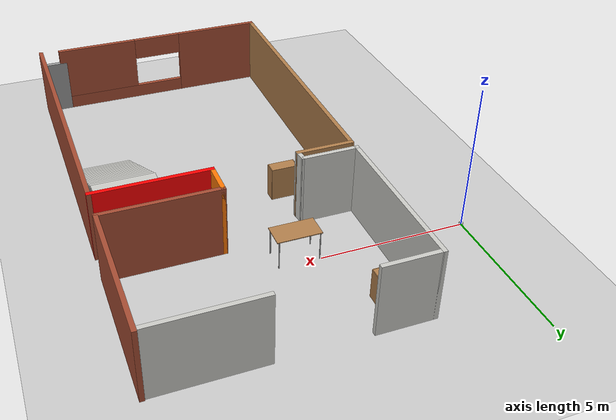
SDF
<sdf version="1.6">
 <world name="default">
  <model name="ground_plane">
   <static>1</static>
   <link name="link">
    <collision name="collision">
     <geometry><plane><normal>0 0 1</normal><size>100 100</size></plane></geometry>
     <surface>
      <contact><collide_bitmask>65535</collide_bitmask></contact>
      <friction><ode><mu>100</mu><mu2>50</mu2></ode></friction>
     </surface>
    </collision>
    <visual name="visual">
     <cast_shadows>0</cast_shadows>
     <geometry><plane><normal>0 0 1</normal><size>100 100</size></plane></geometry>
     <material>
      <script><uri>file://media/materials/scripts/gazebo.material</uri><name>Gazebo/Grey</name></script>
     </material>
    </visual>
   </link>
  </model>
  <model name="House_level1">
   <pose>7.29089 -4.3582 0 0 -0 0</pose>
   <link name="Door_0">
    <collision name="Door_0_Collision">
     <geometry><box><size>0.9 0.17 2</size></box></geometry>
     <pose>0 0 1 0 -0 0</pose>
    </collision>
    <visual name="Door_0_Visual">
     <pose>0 0 1 0 -0 0</pose>
     <geometry><box><size>0.9 0.17 2</size></box></geometry>
     <material>
      <script><uri>file://media/materials/scripts/gazebo.material</uri><name>Gazebo/Grey</name></script>
     </material>
    </visual>
    <pose>3.83051 -7.8386 0 0 -0 0</pose>
   </link>
   <link name="Stairs_1">
    <visual name="Stairs_1_Visual_0">
     <pose>3.1486 -2.76175 0.083333 0 -0 -3.14159</pose>
     <geometry><box><size>2 0.320133 0.166667</size></box></geometry>
     <material>
      <script><uri>file://media/materials/scripts/gazebo.material</uri><name>Gazebo/CeilingTiled</name></script>
      <ambient>0.760784 0.662745 0.627451 1</ambient>
     </material>
     <meta><layer>0</layer></meta>
    </visual>
    <collision name="Stairs_1_Collision_0">
     <geometry><box><size>2 0.320133 0.166667</size></box></geometry>
     <pose>3.1486 -2.76175 0.083333 0 -0 -3.14159</pose>
    </collision>
    <visual name="Stairs_1_Visual_1">
     <pose>3.1486 -2.44161 0.25 0 -0 -3.14159</pose>
     <geometry><box><size>2 0.320133 0.166667</size></box></geometry>
     <material>
      <script><uri>file://media/materials/scripts/gazebo.material</uri><name>Gazebo/CeilingTiled</name></script>
      <ambient>0.760784 0.662745 0.627451 1</ambient>
     </material>
     <meta><layer>0</layer></meta>
    </visual>
    <collision name="Stairs_1_Collision_1">
     <geometry><box><size>2 0.320133 0.166667</size></box></geometry>
     <pose>3.1486 -2.44161 0.25 0 -0 -3.14159</pose>
    </collision>
    <visual name="Stairs_1_Visual_2">
     <pose>3.1486 -2.12148 0.416667 0 -0 -3.14159</pose>
     <geometry><box><size>2 0.320133 0.166667</size></box></geometry>
     <material>
      <script><uri>file://media/materials/scripts/gazebo.material</uri><name>Gazebo/CeilingTiled</name></script>
      <ambient>0.760784 0.662745 0.627451 1</ambient>
     </material>
     <meta><layer>0</layer></meta>
    </visual>
    <collision name="Stairs_1_Collision_2">
     <geometry><box><size>2 0.320133 0.166667</size></box></geometry>
     <pose>3.1486 -2.12148 0.416667 0 -0 -3.14159</pose>
    </collision>
    <visual name="Stairs_1_Visual_3">
     <pose>3.1486 -1.80135 0.583333 0 -0 -3.14159</pose>
     <geometry><box><size>2 0.320133 0.166667</size></box></geometry>
     <material>
      <script><uri>file://media/materials/scripts/gazebo.material</uri><name>Gazebo/CeilingTiled</name></script>
      <ambient>0.760784 0.662745 0.627451 1</ambient>
     </material>
     <meta><layer>0</layer></meta>
    </visual>
    <collision name="Stairs_1_Collision_3">
     <geometry><box><size>2 0.320133 0.166667</size></box></geometry>
     <pose>3.1486 -1.80135 0.583333 0 -0 -3.14159</pose>
    </collision>
    <visual name="Stairs_1_Visual_4">
     <pose>3.1486 -1.48121 0.75 0 -0 -3.14159</pose>
     <geometry><box><size>2 0.320133 0.166667</size></box></geometry>
     <material>
      <script><uri>file://media/materials/scripts/gazebo.material</uri><name>Gazebo/CeilingTiled</name></script>
      <ambient>0.760784 0.662745 0.627451 1</ambient>
     </material>
     <meta><layer>0</layer></meta>
    </visual>
    <collision name="Stairs_1_Collision_4">
     <geometry><box><size>2 0.320133 0.166667</size></box></geometry>
     <pose>3.1486 -1.48121 0.75 0 -0 -3.14159</pose>
    </collision>
    <visual name="Stairs_1_Visual_5">
     <pose>3.1486 -1.16108 0.916667 0 -0 -3.14159</pose>
     <geometry><box><size>2 0.320133 0.166667</size></box></geometry>
     <material>
      <script><uri>file://media/materials/scripts/gazebo.material</uri><name>Gazebo/CeilingTiled</name></script>
      <ambient>0.760784 0.662745 0.627451 1</ambient>
     </material>
     <meta><layer>0</layer></meta>
    </visual>
    <collision name="Stairs_1_Collision_5">
     <geometry><box><size>2 0.320133 0.166667</size></box></geometry>
     <pose>3.1486 -1.16108 0.916667 0 -0 -3.14159</pose>
    </collision>
    <visual name="Stairs_1_Visual_6">
     <pose>3.1486 -0.840946 1.08333 0 -0 -3.14159</pose>
     <geometry><box><size>2 0.320133 0.166667</size></box></geometry>
     <material>
      <script><uri>file://media/materials/scripts/gazebo.material</uri><name>Gazebo/CeilingTiled</name></script>
      <ambient>0.760784 0.662745 0.627451 1</ambient>
     </material>
     <meta><layer>0</layer></meta>
    </visual>
    <collision name="Stairs_1_Collision_6">
     <geometry><box><size>2 0.320133 0.166667</size></box></geometry>
     <pose>3.1486 -0.840946 1.08333 0 -0 -3.14159</pose>
    </collision>
    <visual name="Stairs_1_Visual_7">
     <pose>3.1486 -0.520813 1.25 0 -0 -3.14159</pose>
     <geometry><box><size>2 0.320133 0.166667</size></box></geometry>
     <material>
      <script><uri>file://media/materials/scripts/gazebo.material</uri><name>Gazebo/CeilingTiled</name></script>
      <ambient>0.760784 0.662745 0.627451 1</ambient>
     </material>
     <meta><layer>0</layer></meta>
    </visual>
    <collision name="Stairs_1_Collision_7">
     <geometry><box><size>2 0.320133 0.166667</size></box></geometry>
     <pose>3.1486 -0.520813 1.25 0 -0 -3.14159</pose>
    </collision>
    <visual name="Stairs_1_Visual_8">
     <pose>3.1486 -0.200679 1.41667 0 -0 -3.14159</pose>
     <geometry><box><size>2 0.320133 0.166667</size></box></geometry>
     <material>
      <script><uri>file://media/materials/scripts/gazebo.material</uri><name>Gazebo/CeilingTiled</name></script>
      <ambient>0.760784 0.662745 0.627451 1</ambient>
     </material>
     <meta><layer>0</layer></meta>
    </visual>
    <collision name="Stairs_1_Collision_8">
     <geometry><box><size>2 0.320133 0.166667</size></box></geometry>
     <pose>3.1486 -0.200679 1.41667 0 -0 -3.14159</pose>
    </collision>
    <visual name="Stairs_1_Visual_9">
     <pose>3.1486 0.119454 1.58333 0 -0 -3.14159</pose>
     <geometry><box><size>2 0.320133 0.166667</size></box></geometry>
     <material>
      <script><uri>file://media/materials/scripts/gazebo.material</uri><name>Gazebo/CeilingTiled</name></script>
      <ambient>0.760784 0.662745 0.627451 1</ambient>
     </material>
     <meta><layer>0</layer></meta>
    </visual>
    <collision name="Stairs_1_Collision_9">
     <geometry><box><size>2 0.320133 0.166667</size></box></geometry>
     <pose>3.1486 0.119454 1.58333 0 -0 -3.14159</pose>
    </collision>
    <visual name="Stairs_1_Visual_10">
     <pose>3.1486 0.439587 1.75 0 -0 -3.14159</pose>
     <geometry><box><size>2 0.320133 0.166667</size></box></geometry>
     <material>
      <script><uri>file://media/materials/scripts/gazebo.material</uri><name>Gazebo/CeilingTiled</name></script>
      <ambient>0.760784 0.662745 0.627451 1</ambient>
     </material>
     <meta><layer>0</layer></meta>
    </visual>
    <collision name="Stairs_1_Collision_10">
     <geometry><box><size>2 0.320133 0.166667</size></box></geometry>
     <pose>3.1486 0.439587 1.75 0 -0 -3.14159</pose>
    </collision>
    <visual name="Stairs_1_Visual_11">
     <pose>3.1486 0.759721 1.91667 0 -0 -3.14159</pose>
     <geometry><box><size>2 0.320133 0.166667</size></box></geometry>
     <material>
      <script><uri>file://media/materials/scripts/gazebo.material</uri><name>Gazebo/CeilingTiled</name></script>
      <ambient>0.760784 0.662745 0.627451 1</ambient>
     </material>
     <meta><layer>0</layer></meta>
    </visual>
    <collision name="Stairs_1_Collision_11">
     <geometry><box><size>2 0.320133 0.166667</size></box></geometry>
     <pose>3.1486 0.759721 1.91667 0 -0 -3.14159</pose>
    </collision>
    <visual name="Stairs_1_Visual_12">
     <pose>3.1486 1.07985 2.08333 0 -0 -3.14159</pose>
     <geometry><box><size>2 0.320133 0.166667</size></box></geometry>
     <material>
      <script><uri>file://media/materials/scripts/gazebo.material</uri><name>Gazebo/CeilingTiled</name></script>
      <ambient>0.760784 0.662745 0.627451 1</ambient>
     </material>
     <meta><layer>0</layer></meta>
    </visual>
    <collision name="Stairs_1_Collision_12">
     <geometry><box><size>2 0.320133 0.166667</size></box></geometry>
     <pose>3.1486 1.07985 2.08333 0 -0 -3.14159</pose>
    </collision>
    <visual name="Stairs_1_Visual_13">
     <pose>3.1486 1.39999 2.25 0 -0 -3.14159</pose>
     <geometry><box><size>2 0.320133 0.166667</size></box></geometry>
     <material>
      <script><uri>file://media/materials/scripts/gazebo.material</uri><name>Gazebo/CeilingTiled</name></script>
      <ambient>0.760784 0.662745 0.627451 1</ambient>
     </material>
     <meta><layer>0</layer></meta>
    </visual>
    <collision name="Stairs_1_Collision_13">
     <geometry><box><size>2 0.320133 0.166667</size></box></geometry>
     <pose>3.1486 1.39999 2.25 0 -0 -3.14159</pose>
    </collision>
    <visual name="Stairs_1_Visual_14">
     <pose>3.1486 1.72012 2.41667 0 -0 -3.14159</pose>
     <geometry><box><size>2 0.320133 0.166667</size></box></geometry>
     <material>
      <script><uri>file://media/materials/scripts/gazebo.material</uri><name>Gazebo/CeilingTiled</name></script>
      <ambient>0.760784 0.662745 0.627451 1</ambient>
     </material>
     <meta><layer>0</layer></meta>
    </visual>
    <collision name="Stairs_1_Collision_14">
     <geometry><box><size>2 0.320133 0.166667</size></box></geometry>
     <pose>3.1486 1.72012 2.41667 0 -0 -3.14159</pose>
    </collision>
   </link>
   <link name="Wall_0">
    <pose>-0.364367 -7.835 0 0 -0 0</pose>
    <visual name="Wall_0_Visual_0">
     <pose>-2.39909 0 1.25 0 -0 0</pose>
     <geometry><box><size>3.20181 0.15 2.5</size></box></geometry>
     <material>
      <script><uri>file://media/materials/scripts/gazebo.material</uri><name>Gazebo/Bricks</name></script>
      <ambient>1 0 0 1</ambient>
     </material>
     <meta><layer>0</layer></meta>
    </visual>
    <collision name="Wall_0_Collision_0">
     <geometry><box><size>3.20181 0.15 2.5</size></box></geometry>
     <pose>-2.39909 0 1.25 0 -0 0</pose>
    </collision>
    <visual name="Wall_0_Visual_1">
     <pose>1.60091 0 0.25 0 -0 0</pose>
     <geometry><box><size>4.79819 0.15 0.5</size></box></geometry>
     <material>
      <script><uri>file://media/materials/scripts/gazebo.material</uri><name>Gazebo/Bricks</name></script>
      <ambient>1 0 0 1</ambient>
     </material>
     <meta><layer>0</layer></meta>
    </visual>
    <collision name="Wall_0_Collision_1">
     <geometry><box><size>4.79819 0.15 0.5</size></box></geometry>
     <pose>1.60091 0 0.25 0 -0 0</pose>
    </collision>
    <visual name="Wall_0_Visual_2">
     <pose>2.5009 0 1.5 0 -0 0</pose>
     <geometry><box><size>2.99819 0.15 2</size></box></geometry>
     <material>
      <script><uri>file://media/materials/scripts/gazebo.material</uri><name>Gazebo/Bricks</name></script>
      <ambient>1 0 0 1</ambient>
     </material>
     <meta><layer>0</layer></meta>
    </visual>
    <collision name="Wall_0_Collision_2">
     <geometry><box><size>2.99819 0.15 2</size></box></geometry>
     <pose>2.5009 0 1.5 0 -0 0</pose>
    </collision>
    <visual name="Wall_0_Visual_3">
     <pose>0.101809 0 2.1 0 -0 0</pose>
     <geometry><box><size>1.8 0.15 0.8</size></box></geometry>
     <material>
      <script><uri>file://media/materials/scripts/gazebo.material</uri><name>Gazebo/Bricks</name></script>
      <ambient>1 0 0 1</ambient>
     </material>
     <meta><layer>0</layer></meta>
    </visual>
    <collision name="Wall_0_Collision_3">
     <geometry><box><size>1.8 0.15 0.8</size></box></geometry>
     <pose>0.101809 0 2.1 0 -0 0</pose>
    </collision>
   </link>
   <link name="Wall_11">
    <collision name="Wall_11_Collision">
     <geometry><box><size>1.25 0.15 2.5</size></box></geometry>
     <pose>0 0 1.25 0 -0 0</pose>
    </collision>
    <visual name="Wall_11_Visual">
     <pose>0 0 1.25 0 -0 0</pose>
     <geometry><box><size>1.25 0.15 2.5</size></box></geometry>
     <material>
      <script><uri>file://media/materials/scripts/gazebo.material</uri><name>Gazebo/Grey</name></script>
      <ambient>0.996078 0.47451 0.0196078 1</ambient>
     </material>
     <meta><layer>0</layer></meta>
    </visual>
    <pose>0.439633 2.5 0 0 -0 1.5708</pose>
   </link>
   <link name="Wall_12">
    <collision name="Wall_12_Collision">
     <geometry><box><size>4 0.15 2.5</size></box></geometry>
     <pose>0 0 1.25 0 -0 0</pose>
    </collision>
    <visual name="Wall_12_Visual">
     <pose>0 0 1.25 0 -0 0</pose>
     <geometry><box><size>4 0.15 2.5</size></box></geometry>
     <material>
      <script><uri>file://media/materials/scripts/gazebo.material</uri><name>Gazebo/Bricks</name></script>
      <ambient>1 0 0 1</ambient>
     </material>
     <meta><layer>0</layer></meta>
    </visual>
    <pose>2.36463 3.05 0 0 -0 0</pose>
   </link>
   <link name="Wall_13">
    <collision name="Wall_13_Collision">
     <geometry><box><size>5 0.15 2.5</size></box></geometry>
     <pose>0 0 1.25 0 -0 0</pose>
    </collision>
    <visual name="Wall_13_Visual">
     <pose>0 0 1.25 0 -0 0</pose>
     <geometry><box><size>5 0.15 2.5</size></box></geometry>
     <material>
      <script><uri>file://media/materials/scripts/gazebo.material</uri><name>Gazebo/Bricks</name></script>
      <ambient>1 0 0 1</ambient>
     </material>
     <meta><layer>0</layer></meta>
    </visual>
    <pose>4.28963 5.475 0 0 -0 1.5708</pose>
   </link>
   <link name="Wall_16">
    <collision name="Wall_16_Collision">
     <geometry><box><size>0.501746 0.15 2.5</size></box></geometry>
     <pose>0 0 1.25 0 -0 0</pose>
    </collision>
    <visual name="Wall_16_Visual">
     <pose>0 0 1.25 0 -0 0</pose>
     <geometry><box><size>0.501746 0.15 2.5</size></box></geometry>
     <material>
      <script><uri>file://media/materials/scripts/gazebo.material</uri><name>Gazebo/CeilingTiled</name></script>
      <ambient>0.996078 0.47451 0.0196078 1</ambient>
     </material>
     <meta><layer>0</layer></meta>
    </visual>
    <pose>-2.42187 2.19 0 0 -0 1.67047</pose>
   </link>
   <link name="Wall_17">
    <collision name="Wall_17_Collision">
     <geometry><box><size>2 0.15 2.5</size></box></geometry>
     <pose>0 0 1.25 0 -0 0</pose>
    </collision>
    <visual name="Wall_17_Visual">
     <pose>0 0 1.25 0 -0 0</pose>
     <geometry><box><size>2 0.15 2.5</size></box></geometry>
     <material>
      <script><uri>file://media/materials/scripts/gazebo.material</uri><name>Gazebo/CeilingTiled</name></script>
      <ambient>0.760784 0.662745 0.627451 1</ambient>
     </material>
     <meta><layer>0</layer></meta>
    </visual>
    <pose>-3.36437 2.365 0 0 -0 3.14159</pose>
   </link>
   <link name="Wall_18">
    <collision name="Wall_18_Collision">
     <geometry><box><size>5.646 0.15 2.5</size></box></geometry>
     <pose>0 0 1.25 0 -0 0</pose>
    </collision>
    <visual name="Wall_18_Visual">
     <pose>0 0 1.25 0 -0 0</pose>
     <geometry><box><size>5.646 0.15 2.5</size></box></geometry>
     <material>
      <script><uri>file://media/materials/scripts/gazebo.material</uri><name>Gazebo/CeilingTiled</name></script>
      <ambient>1 1 1 1</ambient>
     </material>
     <meta><layer>0</layer></meta>
    </visual>
    <pose>-4.28937 5.113 0 0 -0 1.5708</pose>
   </link>
   <link name="Wall_21">
    <pose>-0.064367 7.861 0 0 -0 0</pose>
    <visual name="Wall_21_Visual_0">
     <pose>-3.29914 0 1.25 0 -0 0</pose>
     <geometry><box><size>2.00172 0.15 2.5</size></box></geometry>
     <material>
      <script><uri>file://media/materials/scripts/gazebo.material</uri><name>Gazebo/CeilingTiled</name></script>
      <ambient>1 1 1 1</ambient>
     </material>
     <meta><layer>0</layer></meta>
    </visual>
    <collision name="Wall_21_Collision_0">
     <geometry><box><size>2.00172 0.15 2.5</size></box></geometry>
     <pose>-3.29914 0 1.25 0 -0 0</pose>
    </collision>
    <visual name="Wall_21_Visual_1">
     <pose>2.50086 0 1.25 0 -0 0</pose>
     <geometry><box><size>3.59828 0.15 2.5</size></box></geometry>
     <material>
      <script><uri>file://media/materials/scripts/gazebo.material</uri><name>Gazebo/CeilingTiled</name></script>
      <ambient>1 1 1 1</ambient>
     </material>
     <meta><layer>0</layer></meta>
    </visual>
    <collision name="Wall_21_Collision_1">
     <geometry><box><size>3.59828 0.15 2.5</size></box></geometry>
     <pose>2.50086 0 1.25 0 -0 0</pose>
    </collision>
   </link>
   <link name="Wall_3">
    <collision name="Wall_3_Collision">
     <geometry><box><size>10 0.15 2.5</size></box></geometry>
     <pose>0 0 1.25 0 -0 0</pose>
    </collision>
    <visual name="Wall_3_Visual">
     <pose>0 0 1.25 0 -0 0</pose>
     <geometry><box><size>10 0.15 2.5</size></box></geometry>
     <material>
      <script><uri>file://media/materials/scripts/gazebo.material</uri><name>Gazebo/Bricks</name></script>
      <ambient>1 0 0 1</ambient>
     </material>
     <meta><layer>0</layer></meta>
    </visual>
    <pose>4.28963 -2.975 0 0 -0 1.5708</pose>
   </link>
   <link name="Wall_5">
    <collision name="Wall_5_Collision">
     <geometry><box><size>10 0.15 2.5</size></box></geometry>
     <pose>0 0 1.25 0 -0 0</pose>
    </collision>
    <visual name="Wall_5_Visual">
     <pose>0 0 1.25 0 -0 0</pose>
     <geometry><box><size>10 0.15 2.5</size></box></geometry>
     <material>
      <script><uri>file://media/materials/scripts/gazebo.material</uri><name>Gazebo/Wood</name></script>
      <ambient>0.760784 0.662745 0.627451 1</ambient>
     </material>
     <meta><layer>0</layer></meta>
    </visual>
    <pose>-4.27187 -2.91 0 0 -0 1.56724</pose>
   </link>
   <link name="Wall_7">
    <collision name="Wall_7_Collision">
     <geometry><box><size>4 0.15 2.5</size></box></geometry>
     <pose>0 0 1.25 0 -0 0</pose>
    </collision>
    <visual name="Wall_7_Visual">
     <pose>0 0 1.25 0 -0 0</pose>
     <geometry><box><size>4 0.15 2.5</size></box></geometry>
     <material>
      <script><uri>file://media/materials/scripts/gazebo.material</uri><name>Gazebo/Grey</name></script>
      <ambient>1 0 0 1</ambient>
     </material>
     <meta><layer>0</layer></meta>
    </visual>
    <pose>2.36463 1.95 0 0 -0 3.14159</pose>
   </link>
   <link name="Wall_9">
    <collision name="Wall_9_Collision">
     <geometry><box><size>2 0.15 2.5</size></box></geometry>
     <pose>0 0 1.25 0 -0 0</pose>
    </collision>
    <visual name="Wall_9_Visual">
     <pose>0 0 1.25 0 -0 0</pose>
     <geometry><box><size>2 0.15 2.5</size></box></geometry>
     <material>
      <script><uri>file://media/materials/scripts/gazebo.material</uri><name>Gazebo/Wood</name></script>
      <ambient>0.760784 0.662745 0.627451 1</ambient>
     </material>
     <meta><layer>0</layer></meta>
    </visual>
    <pose>-3.32937 2.015 0 0 -0 0</pose>
   </link>
   <static>1</static>
  </model>
  <model name="cabinet">
   <static>1</static>
   <link name="cabinet_bottom_plate">
    <inertial>
     <pose>0 0 -1 0 -0 0</pose>
     <inertia><ixx>2.05</ixx><ixy>0</ixy><ixz>0</ixz><iyy>2.05</iyy><iyz>0</iyz><izz>2.05</izz></inertia>
     <mass>25</mass>
    </inertial>
    <collision name="cabinet_bottom_plate_geom">
     <pose>0 0 0.01 0 -0 0</pose>
     <geometry><box><size>0.45 0.45 0.02</size></box></geometry>
    </collision>
    <visual name="cabinet_bottom_plate_geom_visual">
     <pose>0 0 0.01 0 -0 0</pose>
     <geometry><box><size>0.45 0.45 0.02</size></box></geometry>
     <material>
      <script><uri>file://media/materials/scripts/gazebo.material</uri><name>Gazebo/Wood</name></script>
     </material>
    </visual>
    <collision name="cabinet_bottom_plate_geom_cabinet_back_plate">
     <pose>0.235 0 0.51 0 -0 0</pose>
     <geometry><box><size>0.02 0.45 1.02</size></box></geometry>
    </collision>
    <visual name="cabinet_bottom_plate_geom_cabinet_back_plate_visual">
     <pose>0.235 0 0.51 0 -0 0</pose>
     <geometry><box><size>0.02 0.45 1.02</size></box></geometry>
     <material>
      <script><uri>file://media/materials/scripts/gazebo.material</uri><name>Gazebo/Wood</name></script>
     </material>
    </visual>
    <collision name="cabinet_bottom_plate_geom_cabinet_left_plate">
     <pose>0 0.235 0.51 0 -0 0</pose>
     <geometry><box><size>0.45 0.02 1.02</size></box></geometry>
    </collision>
    <visual name="cabinet_bottom_plate_geom_cabinet_left_plate_visual">
     <pose>0 0.235 0.51 0 -0 0</pose>
     <geometry><box><size>0.45 0.02 1.02</size></box></geometry>
     <material>
      <script><uri>file://media/materials/scripts/gazebo.material</uri><name>Gazebo/Wood</name></script>
     </material>
    </visual>
    <collision name="cabinet_bottom_plate_geom_cabinet_middle_plate">
     <pose>0 0 0.51 0 -0 0</pose>
     <geometry><box><size>0.45 0.45 0.02</size></box></geometry>
    </collision>
    <visual name="cabinet_bottom_plate_geom_cabinet_middle_plate_visual">
     <pose>0 0 0.51 0 -0 0</pose>
     <geometry><box><size>0.45 0.45 0.02</size></box></geometry>
     <material>
      <script><uri>file://media/materials/scripts/gazebo.material</uri><name>Gazebo/Wood</name></script>
     </material>
    </visual>
    <collision name="cabinet_bottom_plate_geom_cabinet_right_plate">
     <pose>0 -0.235 0.51 0 -0 0</pose>
     <geometry><box><size>0.45 0.02 1.02</size></box></geometry>
    </collision>
    <visual name="cabinet_bottom_plate_geom_cabinet_right_plate_visual">
     <pose>0 -0.235 0.51 0 -0 0</pose>
     <geometry><box><size>0.45 0.02 1.02</size></box></geometry>
     <material>
      <script><uri>file://media/materials/scripts/gazebo.material</uri><name>Gazebo/Wood</name></script>
     </material>
    </visual>
    <collision name="cabinet_bottom_plate_geom_cabinet_top_plate">
     <pose>0 0 1.01 0 -0 0</pose>
     <geometry><box><size>0.45 0.45 0.02</size></box></geometry>
    </collision>
    <visual name="cabinet_bottom_plate_geom_cabinet_top_plate_visual">
     <pose>0 0 1.01 0 -0 0</pose>
     <geometry><box><size>0.45 0.45 0.02</size></box></geometry>
     <material>
      <script><uri>file://media/materials/scripts/gazebo.material</uri><name>Gazebo/Wood</name></script>
     </material>
    </visual>
   </link>
   <pose>4.10378 2.30036 0.012182 0 -0 0</pose>
  </model>
  <model name="bookshelf">
   <static>1</static>
   <link name="link">
    <inertial><mass>1</mass></inertial>
    <collision name="back">
     <pose>0 0.005 0.6 0 -0 0</pose>
     <geometry><box><size>0.9 0.01 1.2</size></box></geometry>
    </collision>
    <visual name="visual1">
     <pose>0 0.005 0.6 0 -0 0</pose>
     <geometry><box><size>0.9 0.01 1.2</size></box></geometry>
     <material>
      <script><uri>file://media/materials/scripts/gazebo.material</uri><name>Gazebo/Wood</name></script>
     </material>
    </visual>
    <collision name="left_side">
     <pose>0.45 -0.195 0.6 0 -0 0</pose>
     <geometry><box><size>0.02 0.4 1.2</size></box></geometry>
    </collision>
    <visual name="visual2">
     <pose>0.45 -0.195 0.6 0 -0 0</pose>
     <geometry><box><size>0.02 0.4 1.2</size></box></geometry>
     <material>
      <script><uri>file://media/materials/scripts/gazebo.material</uri><name>Gazebo/Wood</name></script>
     </material>
    </visual>
    <collision name="right_side">
     <pose>-0.45 -0.195 0.6 0 -0 0</pose>
     <geometry><box><size>0.02 0.4 1.2</size></box></geometry>
    </collision>
    <visual name="visual3">
     <pose>-0.45 -0.195 0.6 0 -0 0</pose>
     <geometry><box><size>0.02 0.4 1.2</size></box></geometry>
     <material>
      <script><uri>file://media/materials/scripts/gazebo.material</uri><name>Gazebo/Wood</name></script>
     </material>
    </visual>
    <collision name="bottom">
     <pose>0 -0.195 0.03 0 -0 0</pose>
     <geometry><box><size>0.88 0.4 0.06</size></box></geometry>
    </collision>
    <visual name="visual4">
     <pose>0 -0.195 0.03 0 -0 0</pose>
     <geometry><box><size>0.88 0.4 0.06</size></box></geometry>
     <material>
      <script><uri>file://media/materials/scripts/gazebo.material</uri><name>Gazebo/Wood</name></script>
     </material>
    </visual>
    <collision name="top">
     <pose>0 -0.195 1.19 0 -0 0</pose>
     <geometry><box><size>0.88 0.4 0.02</size></box></geometry>
    </collision>
    <visual name="visual5">
     <pose>0 -0.195 1.19 0 -0 0</pose>
     <geometry><box><size>0.88 0.4 0.02</size></box></geometry>
     <material>
      <script><uri>file://media/materials/scripts/gazebo.material</uri><name>Gazebo/Wood</name></script>
     </material>
    </visual>
    <collision name="low_shelf">
     <pose>0 -0.195 0.43 0 -0 0</pose>
     <geometry><box><size>0.88 0.4 0.02</size></box></geometry>
    </collision>
    <visual name="visual6">
     <pose>0 -0.195 0.43 0 -0 0</pose>
     <geometry><box><size>0.88 0.4 0.02</size></box></geometry>
     <material>
      <script><uri>file://media/materials/scripts/gazebo.material</uri><name>Gazebo/Wood</name></script>
     </material>
    </visual>
    <collision name="high_shelf">
     <pose>0 -0.195 0.8 0 -0 0</pose>
     <geometry><box><size>0.88 0.4 0.02</size></box></geometry>
    </collision>
    <visual name="visual7">
     <pose>0 -0.195 0.8 0 -0 0</pose>
     <geometry><box><size>0.88 0.4 0.02</size></box></geometry>
     <material>
      <script><uri>file://media/materials/scripts/gazebo.material</uri><name>Gazebo/Wood</name></script>
     </material>
    </visual>
   </link>
   <pose>9.55634 2.54345 0 0 -0 0</pose>
  </model>
  <model name="bookshelf_0">
   <static>1</static>
   <link name="link">
    <inertial><mass>1</mass></inertial>
    <collision name="back">
     <pose>0 0.005 0.6 0 -0 0</pose>
     <geometry><box><size>0.9 0.01 1.2</size></box></geometry>
    </collision>
    <visual name="visual1">
     <pose>0 0.005 0.6 0 -0 0</pose>
     <geometry><box><size>0.9 0.01 1.2</size></box></geometry>
     <material>
      <script><uri>file://media/materials/scripts/gazebo.material</uri><name>Gazebo/Wood</name></script>
     </material>
    </visual>
    <collision name="left_side">
     <pose>0.45 -0.195 0.6 0 -0 0</pose>
     <geometry><box><size>0.02 0.4 1.2</size></box></geometry>
    </collision>
    <visual name="visual2">
     <pose>0.45 -0.195 0.6 0 -0 0</pose>
     <geometry><box><size>0.02 0.4 1.2</size></box></geometry>
     <material>
      <script><uri>file://media/materials/scripts/gazebo.material</uri><name>Gazebo/Wood</name></script>
     </material>
    </visual>
    <collision name="right_side">
     <pose>-0.45 -0.195 0.6 0 -0 0</pose>
     <geometry><box><size>0.02 0.4 1.2</size></box></geometry>
    </collision>
    <visual name="visual3">
     <pose>-0.45 -0.195 0.6 0 -0 0</pose>
     <geometry><box><size>0.02 0.4 1.2</size></box></geometry>
     <material>
      <script><uri>file://media/materials/scripts/gazebo.material</uri><name>Gazebo/Wood</name></script>
     </material>
    </visual>
    <collision name="bottom">
     <pose>0 -0.195 0.03 0 -0 0</pose>
     <geometry><box><size>0.88 0.4 0.06</size></box></geometry>
    </collision>
    <visual name="visual4">
     <pose>0 -0.195 0.03 0 -0 0</pose>
     <geometry><box><size>0.88 0.4 0.06</size></box></geometry>
     <material>
      <script><uri>file://media/materials/scripts/gazebo.material</uri><name>Gazebo/Wood</name></script>
     </material>
    </visual>
    <collision name="top">
     <pose>0 -0.195 1.19 0 -0 0</pose>
     <geometry><box><size>0.88 0.4 0.02</size></box></geometry>
    </collision>
    <visual name="visual5">
     <pose>0 -0.195 1.19 0 -0 0</pose>
     <geometry><box><size>0.88 0.4 0.02</size></box></geometry>
     <material>
      <script><uri>file://media/materials/scripts/gazebo.material</uri><name>Gazebo/Wood</name></script>
     </material>
    </visual>
    <collision name="low_shelf">
     <pose>0 -0.195 0.43 0 -0 0</pose>
     <geometry><box><size>0.88 0.4 0.02</size></box></geometry>
    </collision>
    <visual name="visual6">
     <pose>0 -0.195 0.43 0 -0 0</pose>
     <geometry><box><size>0.88 0.4 0.02</size></box></geometry>
     <material>
      <script><uri>file://media/materials/scripts/gazebo.material</uri><name>Gazebo/Wood</name></script>
     </material>
    </visual>
    <collision name="high_shelf">
     <pose>0 -0.195 0.8 0 -0 0</pose>
     <geometry><box><size>0.88 0.4 0.02</size></box></geometry>
    </collision>
    <visual name="visual7">
     <pose>0 -0.195 0.8 0 -0 0</pose>
     <geometry><box><size>0.88 0.4 0.02</size></box></geometry>
     <material>
      <script><uri>file://media/materials/scripts/gazebo.material</uri><name>Gazebo/Wood</name></script>
     </material>
    </visual>
   </link>
   <pose>4.90189 -3.43425 0 0 -0 0</pose>
  </model>
  <model name="table">
   <static>1</static>
   <link name="link">
    <collision name="surface">
     <pose>0 0 1 0 -0 0</pose>
     <geometry><box><size>1.5 0.8 0.03</size></box></geometry>
     <surface><friction><ode><mu>0.6</mu><mu2>0.6</mu2></ode></friction></surface>
    </collision>
    <visual name="visual1">
     <pose>0 0 1 0 -0 0</pose>
     <geometry><box><size>1.5 0.8 0.03</size></box></geometry>
     <material>
      <script><uri>file://media/materials/scripts/gazebo.material</uri><name>Gazebo/Wood</name></script>
     </material>
    </visual>
    <collision name="front_left_leg">
     <pose>0.68 0.38 0.5 0 -0 0</pose>
     <geometry><cylinder><radius>0.02</radius><length>1</length></cylinder></geometry>
    </collision>
    <visual name="front_left_leg">
     <pose>0.68 0.38 0.5 0 -0 0</pose>
     <geometry><cylinder><radius>0.02</radius><length>1</length></cylinder></geometry>
     <material>
      <script><uri>file://media/materials/scripts/gazebo.material</uri><name>Gazebo/Grey</name></script>
     </material>
    </visual>
    <collision name="front_right_leg">
     <pose>0.68 -0.38 0.5 0 -0 0</pose>
     <geometry><cylinder><radius>0.02</radius><length>1</length></cylinder></geometry>
    </collision>
    <visual name="front_right_leg">
     <pose>0.68 -0.38 0.5 0 -0 0</pose>
     <geometry><cylinder><radius>0.02</radius><length>1</length></cylinder></geometry>
     <material>
      <script><uri>file://media/materials/scripts/gazebo.material</uri><name>Gazebo/Grey</name></script>
     </material>
    </visual>
    <collision name="back_right_leg">
     <pose>-0.68 -0.38 0.5 0 -0 0</pose>
     <geometry><cylinder><radius>0.02</radius><length>1</length></cylinder></geometry>
    </collision>
    <visual name="back_right_leg">
     <pose>-0.68 -0.38 0.5 0 -0 0</pose>
     <geometry><cylinder><radius>0.02</radius><length>1</length></cylinder></geometry>
     <material>
      <script><uri>file://media/materials/scripts/gazebo.material</uri><name>Gazebo/Grey</name></script>
     </material>
    </visual>
    <collision name="back_left_leg">
     <pose>-0.68 0.38 0.5 0 -0 0</pose>
     <geometry><cylinder><radius>0.02</radius><length>1</length></cylinder></geometry>
    </collision>
    <visual name="back_left_leg">
     <pose>-0.68 0.38 0.5 0 -0 0</pose>
     <geometry><cylinder><radius>0.02</radius><length>1</length></cylinder></geometry>
     <material>
      <script><uri>file://media/materials/scripts/gazebo.material</uri><name>Gazebo/Grey</name></script>
     </material>
    </visual>
   </link>
   <pose>5.73049 -0.405648 0 0 -0 0</pose>
  </model>
  <model name="camera">
   <pose>-8e-06 1.1e-05 0.05 0 -0 0.000341</pose>
   <link name="link">
    <inertial>
     <mass>0.1</mass>
     <inertia>
      <ixx>0.000166667</ixx>
      <iyy>0.000166667</iyy>
      <izz>0.000166667</izz>
      <ixy>0</ixy>
      <ixz>0</ixz>
      <iyz>0</iyz>
     </inertia>
    </inertial>
    <collision name="collision"><geometry><box><size>0.1 0.1 0.1</size></box></geometry></collision>
    <visual name="visual"><geometry><box><size>0.1 0.1 0.1</size></box></geometry></visual>
    <sensor name="camera" type="camera">
     <camera name="__default__">
      <horizontal_fov>1.047</horizontal_fov>
      <image><width>320</width><height>240</height></image>
      <clip><near>0.1</near><far>100</far></clip>
     </camera>
     <always_on>1</always_on>
     <update_rate>30</update_rate>
     <visualize>1</visualize>
    </sensor>
   </link>
  </model>
 </world>
</sdf>
